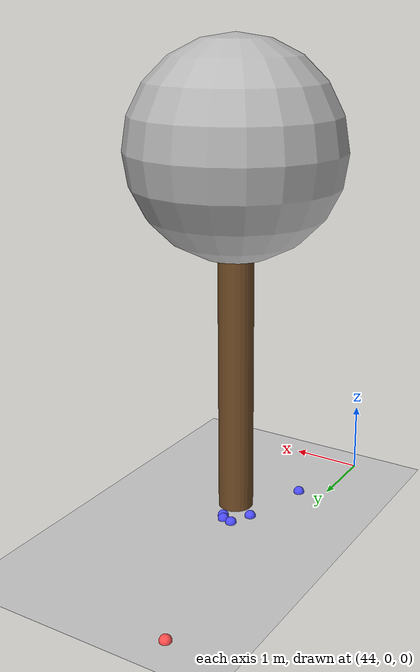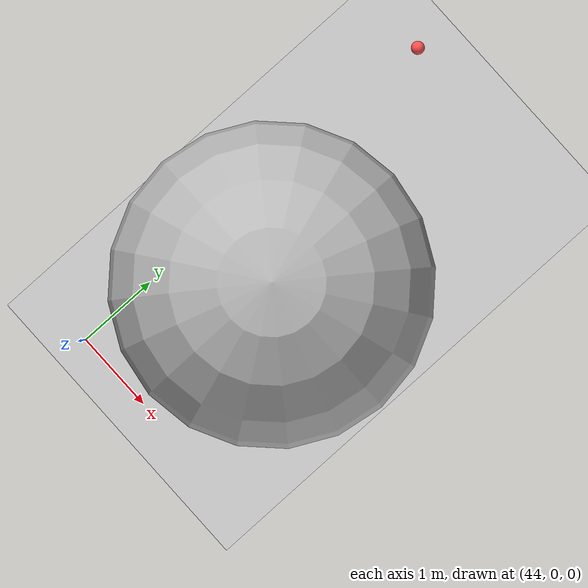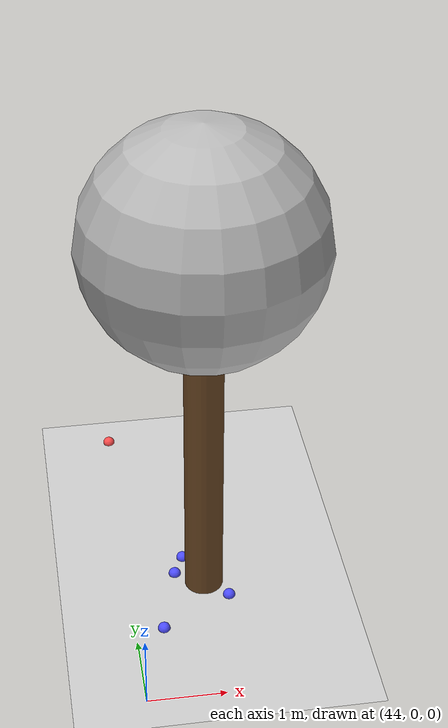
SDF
<sdf version="1.7">
 <world name="default">
  <model name="ground_plane">
   <static>1</static>
   <link name="link">
    <collision name="collision">
     <geometry><plane><normal>0 0 1</normal><size>100 100</size></plane></geometry>
     <surface>
      <contact><collide_bitmask>65535</collide_bitmask></contact>
      <friction><ode><mu>100</mu><mu2>50</mu2></ode></friction>
     </surface>
    </collision>
    <visual name="visual">
     <cast_shadows>0</cast_shadows>
     <geometry><plane><normal>0 0 1</normal><size>100 100</size></plane></geometry>
     <material>
      <script><uri>file://media/materials/scripts/gazebo.material</uri><name>Gazebo/Grey</name></script>
     </material>
    </visual>
   </link>
  </model>
  <model name="tree_simple_93">
   <static>1</static>
   <link name="link">
    <pose>0 0 0.1 0 -0 0</pose>
    <inertial>
     <mass>666</mass>
     <inertia>
      <ixx>0.0861167</ixx>
      <ixy>0</ixy>
      <ixz>0</ixz>
      <iyy>0.0861167</iyy>
      <iyz>0</iyz>
      <izz>0.0861167</izz>
     </inertia>
    </inertial>
    <collision name="collision_trunk">
     <pose>0 0 2 0 -0 0</pose>
     <geometry><cylinder><radius>0.25</radius><length>4</length></cylinder></geometry>
     <surface>
      <contact>
       <poissons_ratio>0.347</poissons_ratio>
       <elastic_modulus>8.8e+09</elastic_modulus>
       <ode><kp>100000</kp><kd>100</kd><max_vel>100</max_vel><min_depth>0.001</min_depth></ode>
      </contact>
      <friction>
       <torsional>
        <coefficient>1</coefficient>
        <use_patch_radius>0</use_patch_radius>
        <surface_radius>0.01</surface_radius>
       </torsional>
      </friction>
     </surface>
    </collision>
    <collision name="collision_treetop">
     <pose>0 0 5.2 0 -0 0</pose>
     <geometry><sphere><radius>1.5</radius></sphere></geometry>
     <surface>
      <contact>
       <poissons_ratio>0.347</poissons_ratio>
       <elastic_modulus>8.8e+09</elastic_modulus>
       <ode><kp>100000</kp><kd>100</kd><max_vel>100</max_vel><min_depth>0.001</min_depth></ode>
      </contact>
      <friction>
       <torsional>
        <coefficient>1</coefficient>
        <use_patch_radius>0</use_patch_radius>
        <surface_radius>0.01</surface_radius>
       </torsional>
      </friction>
     </surface>
    </collision>
    <visual name="trunk">
     <pose>0 0 2 0 -0 0</pose>
     <geometry><cylinder><radius>0.25</radius><length>4</length></cylinder></geometry>
     <material>
      <script>
       <uri>model://tree_simple/scripts</uri>
       <uri>model://tree_simple/materials/textures</uri>
       <name>TreeSimple/Trunk</name>
      </script>
     </material>
    </visual>
    <visual name="treetop">
     <pose>0 0 5.2 0 -0 0</pose>
     <geometry><sphere><radius>1.5</radius></sphere></geometry>
     <material>
      <script>
       <uri>model://tree_simple/scripts</uri>
       <uri>model://tree_simple/materials/textures</uri>
       <name>TreeSimple/Treetop</name>
      </script>
     </material>
    </visual>
   </link>
   <pose>45 2 -0.1 0 -0 0</pose>
  </model>
  <model name="seed_red_325">
   <link name="link">
    <inertial>
     <mass>1</mass>
     <inertia><ixx>0.1</ixx><ixy>0</ixy><ixz>0</ixz><iyy>0.1</iyy><iyz>0</iyz><izz>0.1</izz></inertia>
    </inertial>
    <visual name="visual">
     <geometry><sphere><radius>0.08</radius></sphere></geometry>
     <material>
      <script><name>Gazebo/Grey</name><uri>file://media/materials/scripts/gazebo.material</uri></script>
      <shader type="pixel"><normal_map>__default__</normal_map></shader>
      <ambient>1 0.3 0.3 1</ambient>
      <diffuse>0.7 0.7 0.7 1</diffuse>
      <specular>0.01 0.01 0.01 1</specular>
      <emissive>0 0 0 1</emissive>
     </material>
    </visual>
    <collision name="collision">
     <geometry><sphere><radius>0.0005</radius></sphere></geometry>
     <surface>
      <friction>
       <ode><mu>1</mu><mu2>1</mu2><fdir1>0 0 0</fdir1><slip1>0</slip1><slip2>0</slip2></ode>
       <torsional>
        <coefficient>1</coefficient>
        <patch_radius>0</patch_radius>
        <surface_radius>0</surface_radius>
        <use_patch_radius>1</use_patch_radius>
        <ode><slip>0</slip></ode>
       </torsional>
      </friction>
      <bounce><restitution_coefficient>0</restitution_coefficient><threshold>1e+06</threshold></bounce>
      <contact>
       <collide_without_contact>0</collide_without_contact>
       <collide_without_contact_bitmask>1</collide_without_contact_bitmask>
       <collide_bitmask>1</collide_bitmask>
       <ode>
        <soft_cfm>0</soft_cfm>
        <soft_erp>0.2</soft_erp>
        <kp>1e+13</kp>
        <kd>1</kd>
        <max_vel>0.01</max_vel>
        <min_depth>0</min_depth>
       </ode>
       <bullet>
        <split_impulse>1</split_impulse>
        <split_impulse_penetration_threshold>-0.01</split_impulse_penetration_threshold>
        <soft_cfm>0</soft_cfm>
        <soft_erp>0.2</soft_erp>
        <kp>1e+13</kp>
        <kd>1</kd>
       </bullet>
      </contact>
     </surface>
    </collision>
   </link>
   <static>0</static>
   <pose>44.0474 5.15716 0.0005 0 -0 0</pose>
  </model>
  <model name="seed_blue_193">
   <link name="link">
    <inertial>
     <mass>1</mass>
     <inertia><ixx>0.1</ixx><ixy>0</ixy><ixz>0</ixz><iyy>0.1</iyy><iyz>0</iyz><izz>0.1</izz></inertia>
    </inertial>
    <visual name="visual">
     <geometry><sphere><radius>0.08</radius></sphere></geometry>
     <material>
      <script><name>Gazebo/Grey</name><uri>file://media/materials/scripts/gazebo.material</uri></script>
      <shader type="pixel"><normal_map>__default__</normal_map></shader>
      <ambient>0.3 0.3 1 1</ambient>
      <diffuse>0.7 0.7 0.7 1</diffuse>
      <specular>0.01 0.01 0.01 1</specular>
      <emissive>0 0 0 1</emissive>
     </material>
    </visual>
    <collision name="collision">
     <geometry><sphere><radius>0.0005</radius></sphere></geometry>
     <surface>
      <friction>
       <ode><mu>1</mu><mu2>1</mu2><fdir1>0 0 0</fdir1><slip1>0</slip1><slip2>0</slip2></ode>
       <torsional>
        <coefficient>1</coefficient>
        <patch_radius>0</patch_radius>
        <surface_radius>0</surface_radius>
        <use_patch_radius>1</use_patch_radius>
        <ode><slip>0</slip></ode>
       </torsional>
      </friction>
      <bounce><restitution_coefficient>0</restitution_coefficient><threshold>1e+06</threshold></bounce>
      <contact>
       <collide_without_contact>0</collide_without_contact>
       <collide_without_contact_bitmask>1</collide_without_contact_bitmask>
       <collide_bitmask>1</collide_bitmask>
       <ode>
        <soft_cfm>0</soft_cfm>
        <soft_erp>0.2</soft_erp>
        <kp>1e+13</kp>
        <kd>1</kd>
        <max_vel>0.01</max_vel>
        <min_depth>0</min_depth>
       </ode>
       <bullet>
        <split_impulse>1</split_impulse>
        <split_impulse_penetration_threshold>-0.01</split_impulse_penetration_threshold>
        <soft_cfm>0</soft_cfm>
        <soft_erp>0.2</soft_erp>
        <kp>1e+13</kp>
        <kd>1</kd>
       </bullet>
      </contact>
     </surface>
    </collision>
   </link>
   <static>0</static>
   <pose>44.9261 2.46761 0.0005 0 -0 0</pose>
  </model>
  <model name="seed_blue_195">
   <link name="link">
    <inertial>
     <mass>1</mass>
     <inertia><ixx>0.1</ixx><ixy>0</ixy><ixz>0</ixz><iyy>0.1</iyy><iyz>0</iyz><izz>0.1</izz></inertia>
    </inertial>
    <visual name="visual">
     <geometry><sphere><radius>0.08</radius></sphere></geometry>
     <material>
      <script><name>Gazebo/Grey</name><uri>file://media/materials/scripts/gazebo.material</uri></script>
      <shader type="pixel"><normal_map>__default__</normal_map></shader>
      <ambient>0.3 0.3 1 1</ambient>
      <diffuse>0.7 0.7 0.7 1</diffuse>
      <specular>0.01 0.01 0.01 1</specular>
      <emissive>0 0 0 1</emissive>
     </material>
    </visual>
    <collision name="collision">
     <geometry><sphere><radius>0.0005</radius></sphere></geometry>
     <surface>
      <friction>
       <ode><mu>1</mu><mu2>1</mu2><fdir1>0 0 0</fdir1><slip1>0</slip1><slip2>0</slip2></ode>
       <torsional>
        <coefficient>1</coefficient>
        <patch_radius>0</patch_radius>
        <surface_radius>0</surface_radius>
        <use_patch_radius>1</use_patch_radius>
        <ode><slip>0</slip></ode>
       </torsional>
      </friction>
      <bounce><restitution_coefficient>0</restitution_coefficient><threshold>1e+06</threshold></bounce>
      <contact>
       <collide_without_contact>0</collide_without_contact>
       <collide_without_contact_bitmask>1</collide_without_contact_bitmask>
       <collide_bitmask>1</collide_bitmask>
       <ode>
        <soft_cfm>0</soft_cfm>
        <soft_erp>0.2</soft_erp>
        <kp>1e+13</kp>
        <kd>1</kd>
        <max_vel>0.01</max_vel>
        <min_depth>0</min_depth>
       </ode>
       <bullet>
        <split_impulse>1</split_impulse>
        <split_impulse_penetration_threshold>-0.01</split_impulse_penetration_threshold>
        <soft_cfm>0</soft_cfm>
        <soft_erp>0.2</soft_erp>
        <kp>1e+13</kp>
        <kd>1</kd>
       </bullet>
      </contact>
     </surface>
    </collision>
   </link>
   <static>0</static>
   <pose>45.2928 1.69737 0.0005 0 -0 0</pose>
  </model>
  <model name="seed_blue_196">
   <link name="link">
    <inertial>
     <mass>1</mass>
     <inertia><ixx>0.1</ixx><ixy>0</ixy><ixz>0</ixz><iyy>0.1</iyy><iyz>0</iyz><izz>0.1</izz></inertia>
    </inertial>
    <visual name="visual">
     <geometry><sphere><radius>0.08</radius></sphere></geometry>
     <material>
      <script><name>Gazebo/Grey</name><uri>file://media/materials/scripts/gazebo.material</uri></script>
      <shader type="pixel"><normal_map>__default__</normal_map></shader>
      <ambient>0.3 0.3 1 1</ambient>
      <diffuse>0.7 0.7 0.7 1</diffuse>
      <specular>0.01 0.01 0.01 1</specular>
      <emissive>0 0 0 1</emissive>
     </material>
    </visual>
    <collision name="collision">
     <geometry><sphere><radius>0.0005</radius></sphere></geometry>
     <surface>
      <friction>
       <ode><mu>1</mu><mu2>1</mu2><fdir1>0 0 0</fdir1><slip1>0</slip1><slip2>0</slip2></ode>
       <torsional>
        <coefficient>1</coefficient>
        <patch_radius>0</patch_radius>
        <surface_radius>0</surface_radius>
        <use_patch_radius>1</use_patch_radius>
        <ode><slip>0</slip></ode>
       </torsional>
      </friction>
      <bounce><restitution_coefficient>0</restitution_coefficient><threshold>1e+06</threshold></bounce>
      <contact>
       <collide_without_contact>0</collide_without_contact>
       <collide_without_contact_bitmask>1</collide_without_contact_bitmask>
       <collide_bitmask>1</collide_bitmask>
       <ode>
        <soft_cfm>0</soft_cfm>
        <soft_erp>0.2</soft_erp>
        <kp>1e+13</kp>
        <kd>1</kd>
        <max_vel>0.01</max_vel>
        <min_depth>0</min_depth>
       </ode>
       <bullet>
        <split_impulse>1</split_impulse>
        <split_impulse_penetration_threshold>-0.01</split_impulse_penetration_threshold>
        <soft_cfm>0</soft_cfm>
        <soft_erp>0.2</soft_erp>
        <kp>1e+13</kp>
        <kd>1</kd>
       </bullet>
      </contact>
     </surface>
    </collision>
   </link>
   <static>0</static>
   <pose>44.9781 2.38754 0.0005 0 -0 0</pose>
  </model>
  <model name="seed_blue_197">
   <link name="link">
    <inertial>
     <mass>1</mass>
     <inertia><ixx>0.1</ixx><ixy>0</ixy><ixz>0</ixz><iyy>0.1</iyy><iyz>0</iyz><izz>0.1</izz></inertia>
    </inertial>
    <visual name="visual">
     <geometry><sphere><radius>0.08</radius></sphere></geometry>
     <material>
      <script><name>Gazebo/Grey</name><uri>file://media/materials/scripts/gazebo.material</uri></script>
      <shader type="pixel"><normal_map>__default__</normal_map></shader>
      <ambient>0.3 0.3 1 1</ambient>
      <diffuse>0.7 0.7 0.7 1</diffuse>
      <specular>0.01 0.01 0.01 1</specular>
      <emissive>0 0 0 1</emissive>
     </material>
    </visual>
    <collision name="collision">
     <geometry><sphere><radius>0.0005</radius></sphere></geometry>
     <surface>
      <friction>
       <ode><mu>1</mu><mu2>1</mu2><fdir1>0 0 0</fdir1><slip1>0</slip1><slip2>0</slip2></ode>
       <torsional>
        <coefficient>1</coefficient>
        <patch_radius>0</patch_radius>
        <surface_radius>0</surface_radius>
        <use_patch_radius>1</use_patch_radius>
        <ode><slip>0</slip></ode>
       </torsional>
      </friction>
      <bounce><restitution_coefficient>0</restitution_coefficient><threshold>1e+06</threshold></bounce>
      <contact>
       <collide_without_contact>0</collide_without_contact>
       <collide_without_contact_bitmask>1</collide_without_contact_bitmask>
       <collide_bitmask>1</collide_bitmask>
       <ode>
        <soft_cfm>0</soft_cfm>
        <soft_erp>0.2</soft_erp>
        <kp>1e+13</kp>
        <kd>1</kd>
        <max_vel>0.01</max_vel>
        <min_depth>0</min_depth>
       </ode>
       <bullet>
        <split_impulse>1</split_impulse>
        <split_impulse_penetration_threshold>-0.01</split_impulse_penetration_threshold>
        <soft_cfm>0</soft_cfm>
        <soft_erp>0.2</soft_erp>
        <kp>1e+13</kp>
        <kd>1</kd>
       </bullet>
      </contact>
     </surface>
    </collision>
   </link>
   <static>0</static>
   <pose>44.3691 1.20829 0.0005 0 -0 0</pose>
  </model>
  <model name="seed_blue_198">
   <link name="link">
    <inertial>
     <mass>1</mass>
     <inertia><ixx>0.1</ixx><ixy>0</ixy><ixz>0</ixz><iyy>0.1</iyy><iyz>0</iyz><izz>0.1</izz></inertia>
    </inertial>
    <visual name="visual">
     <geometry><sphere><radius>0.08</radius></sphere></geometry>
     <material>
      <script><name>Gazebo/Grey</name><uri>file://media/materials/scripts/gazebo.material</uri></script>
      <shader type="pixel"><normal_map>__default__</normal_map></shader>
      <ambient>0.3 0.3 1 1</ambient>
      <diffuse>0.7 0.7 0.7 1</diffuse>
      <specular>0.01 0.01 0.01 1</specular>
      <emissive>0 0 0 1</emissive>
     </material>
    </visual>
    <collision name="collision">
     <geometry><sphere><radius>0.0005</radius></sphere></geometry>
     <surface>
      <friction>
       <ode><mu>1</mu><mu2>1</mu2><fdir1>0 0 0</fdir1><slip1>0</slip1><slip2>0</slip2></ode>
       <torsional>
        <coefficient>1</coefficient>
        <patch_radius>0</patch_radius>
        <surface_radius>0</surface_radius>
        <use_patch_radius>1</use_patch_radius>
        <ode><slip>0</slip></ode>
       </torsional>
      </friction>
      <bounce><restitution_coefficient>0</restitution_coefficient><threshold>1e+06</threshold></bounce>
      <contact>
       <collide_without_contact>0</collide_without_contact>
       <collide_without_contact_bitmask>1</collide_without_contact_bitmask>
       <collide_bitmask>1</collide_bitmask>
       <ode>
        <soft_cfm>0</soft_cfm>
        <soft_erp>0.2</soft_erp>
        <kp>1e+13</kp>
        <kd>1</kd>
        <max_vel>0.01</max_vel>
        <min_depth>0</min_depth>
       </ode>
       <bullet>
        <split_impulse>1</split_impulse>
        <split_impulse_penetration_threshold>-0.01</split_impulse_penetration_threshold>
        <soft_cfm>0</soft_cfm>
        <soft_erp>0.2</soft_erp>
        <kp>1e+13</kp>
        <kd>1</kd>
       </bullet>
      </contact>
     </surface>
    </collision>
   </link>
   <static>0</static>
   <pose>44.7813 2.50102 0.0005 0 -0 0</pose>
  </model>
  <model name="seed_blue_199">
   <link name="link">
    <inertial>
     <mass>1</mass>
     <inertia><ixx>0.1</ixx><ixy>0</ixy><ixz>0</ixz><iyy>0.1</iyy><iyz>0</iyz><izz>0.1</izz></inertia>
    </inertial>
    <visual name="visual">
     <geometry><sphere><radius>0.08</radius></sphere></geometry>
     <material>
      <script><name>Gazebo/Grey</name><uri>file://media/materials/scripts/gazebo.material</uri></script>
      <shader type="pixel"><normal_map>__default__</normal_map></shader>
      <ambient>0.3 0.3 1 1</ambient>
      <diffuse>0.7 0.7 0.7 1</diffuse>
      <specular>0.01 0.01 0.01 1</specular>
      <emissive>0 0 0 1</emissive>
     </material>
    </visual>
    <collision name="collision">
     <geometry><sphere><radius>0.0005</radius></sphere></geometry>
     <surface>
      <friction>
       <ode><mu>1</mu><mu2>1</mu2><fdir1>0 0 0</fdir1><slip1>0</slip1><slip2>0</slip2></ode>
       <torsional>
        <coefficient>1</coefficient>
        <patch_radius>0</patch_radius>
        <surface_radius>0</surface_radius>
        <use_patch_radius>1</use_patch_radius>
        <ode><slip>0</slip></ode>
       </torsional>
      </friction>
      <bounce><restitution_coefficient>0</restitution_coefficient><threshold>1e+06</threshold></bounce>
      <contact>
       <collide_without_contact>0</collide_without_contact>
       <collide_without_contact_bitmask>1</collide_without_contact_bitmask>
       <collide_bitmask>1</collide_bitmask>
       <ode>
        <soft_cfm>0</soft_cfm>
        <soft_erp>0.2</soft_erp>
        <kp>1e+13</kp>
        <kd>1</kd>
        <max_vel>0.01</max_vel>
        <min_depth>0</min_depth>
       </ode>
       <bullet>
        <split_impulse>1</split_impulse>
        <split_impulse_penetration_threshold>-0.01</split_impulse_penetration_threshold>
        <soft_cfm>0</soft_cfm>
        <soft_erp>0.2</soft_erp>
        <kp>1e+13</kp>
        <kd>1</kd>
       </bullet>
      </contact>
     </surface>
    </collision>
   </link>
   <static>0</static>
   <pose>44.638 2.20363 0.0005 0 -0 0</pose>
  </model>
 </world>
</sdf>
